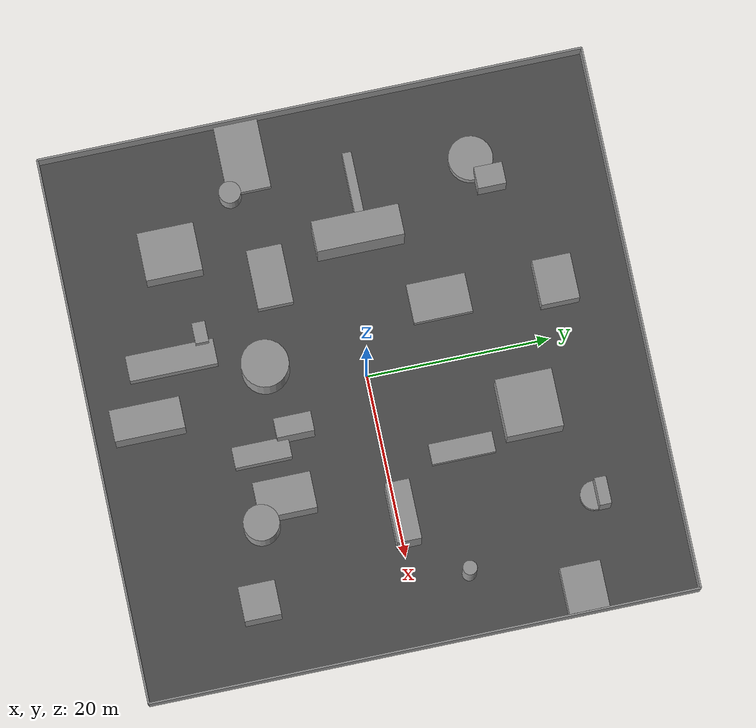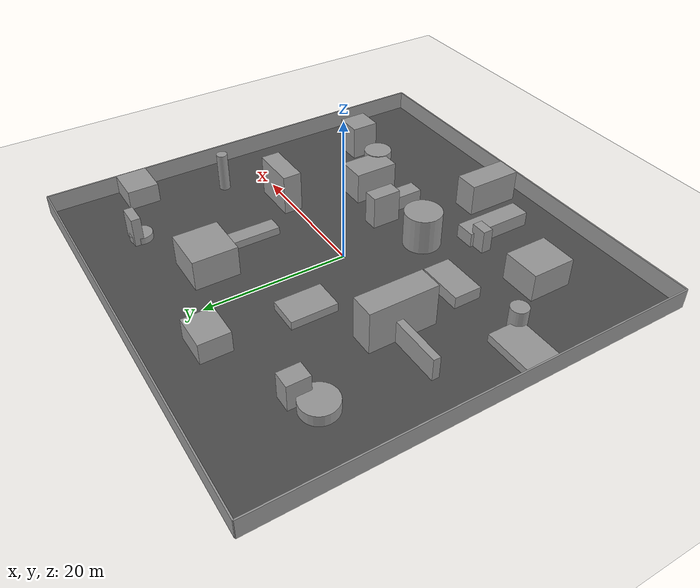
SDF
<sdf version="1.6">
 <world name="default">
  <light name="sun" type="directional">
   <pose>0 0 10 0 -0 0</pose>
   <diffuse>0.8 0.8 0.8 1</diffuse>
   <specular>0.2 0.2 0.2 1</specular>
   <attenuation>
    <range>1000</range>
    <constant>0.9</constant>
    <linear>0.01</linear>
    <quadratic>0.001</quadratic>
   </attenuation>
   <direction>-0.5 0.1 -0.9</direction>
  </light>
  <model name="ground_plane">
   <static>1</static>
   <link name="link">
    <collision name="collision">
     <geometry><plane><normal>0 0 1</normal><size>100 100</size></plane></geometry>
     <surface>
      <contact><collide_bitmask>65535</collide_bitmask></contact>
      <friction><ode><mu>100</mu><mu2>50</mu2></ode></friction>
     </surface>
    </collision>
    <visual name="visual">
     <cast_shadows>0</cast_shadows>
     <geometry><plane><normal>0 0 1</normal><size>100 100</size></plane></geometry>
     <material>
      <script><uri>file://media/materials/scripts/gazebo.material</uri><name>Gazebo/Grey</name></script>
     </material>
    </visual>
   </link>
  </model>
  <gravity>0 0 -9.8</gravity>
  <magnetic_field>6e-06 2.3e-05 -4.2e-05</magnetic_field>
  <atmosphere type="adiabatic"/>
  <physics name="default_physics" default="0" type="ode">
   <max_step_size>0.001</max_step_size>
   <real_time_factor>1</real_time_factor>
   <real_time_update_rate>1000</real_time_update_rate>
  </physics>
  <scene><ambient>0.4 0.4 0.4 1</ambient><background>0.7 0.7 0.7 1</background><shadows>1</shadows></scene>
  <spherical_coordinates>
   <surface_model>EARTH_WGS84</surface_model>
   <latitude_deg>0</latitude_deg>
   <longitude_deg>0</longitude_deg>
   <elevation>0</elevation>
   <heading_deg>0</heading_deg>
  </spherical_coordinates>
  <model name="asphalt_plane">
   <static>1</static>
   <link name="link">
    <collision name="collision"><geometry><box><size>60 60 0.1</size></box></geometry></collision>
    <visual name="visual">
     <cast_shadows>0</cast_shadows>
     <geometry><box><size>60 60 0.1</size></box></geometry>
     <material>
      <script>
       <uri>model://asphalt_plane/materials/scripts</uri>
       <uri>model://asphalt_plane/materials/textures</uri>
       <name>vrc/asphalt</name>
      </script>
     </material>
    </visual>
   </link>
  </model>
  <model name="wall_north">
   <static>1</static>
   <link name="link">
    <pose>0 0 1.4 0 -0 0</pose>
    <collision name="collision"><geometry><box><size>60 0.2 2.8</size></box></geometry></collision>
    <visual name="visual">
     <cast_shadows>0</cast_shadows>
     <geometry><box><size>60 0.2 2.8</size></box></geometry>
     <material>
      <script>
       <uri>model://grey_wall/materials/scripts</uri>
       <uri>model://grey_wall/materials/textures</uri>
       <name>vrc/grey_wall</name>
      </script>
     </material>
    </visual>
   </link>
   <pose>0 30 0 0 -0 0</pose>
  </model>
  <model name="wall_south">
   <static>1</static>
   <link name="link">
    <pose>0 0 1.4 0 -0 0</pose>
    <collision name="collision"><geometry><box><size>60 0.2 2.8</size></box></geometry></collision>
    <visual name="visual">
     <cast_shadows>0</cast_shadows>
     <geometry><box><size>60 0.2 2.8</size></box></geometry>
     <material>
      <script>
       <uri>model://grey_wall/materials/scripts</uri>
       <uri>model://grey_wall/materials/textures</uri>
       <name>vrc/grey_wall</name>
      </script>
     </material>
    </visual>
   </link>
   <pose>0 -30 0 0 -0 0</pose>
  </model>
  <model name="wall_east">
   <static>1</static>
   <link name="link">
    <pose>0 0 1.4 0 -0 0</pose>
    <collision name="collision"><geometry><box><size>60 0.2 2.8</size></box></geometry></collision>
    <visual name="visual">
     <cast_shadows>0</cast_shadows>
     <geometry><box><size>60 0.2 2.8</size></box></geometry>
     <material>
      <script>
       <uri>model://grey_wall/materials/scripts</uri>
       <uri>model://grey_wall/materials/textures</uri>
       <name>vrc/grey_wall</name>
      </script>
     </material>
    </visual>
   </link>
   <pose>30 0 0 0 -0 1.5708</pose>
  </model>
  <model name="wall_west">
   <static>1</static>
   <link name="link">
    <pose>0 0 1.4 0 -0 0</pose>
    <collision name="collision"><geometry><box><size>60 0.2 2.8</size></box></geometry></collision>
    <visual name="visual">
     <cast_shadows>0</cast_shadows>
     <geometry><box><size>60 0.2 2.8</size></box></geometry>
     <material>
      <script>
       <uri>model://grey_wall/materials/scripts</uri>
       <uri>model://grey_wall/materials/textures</uri>
       <name>vrc/grey_wall</name>
      </script>
     </material>
    </visual>
   </link>
   <pose>-30 0 0 0 -0 1.5708</pose>
  </model>
  <model name="shapes">
   <static>1</static>
   <link name="link_0">
    <inertial>
     <mass>358.415</mass>
     <inertia><ixx>6407</ixx><ixy>0</ixy><ixz>0</ixz><iyy>4025.41</iyy><iyz>0</iyz><izz>3064.04</izz></inertia>
    </inertial>
    <pose>-14.9299 2.84768 0 0 -0 0</pose>
    <visual name="visual">
     <geometry><box><size>3.38003 9.54786 11.1063</size></box></geometry>
     <material>
      <lighting>1</lighting>
      <script><uri>file://media/materials/scripts/gazebo.material</uri><name>Gazebo/Grey</name></script>
      <shader type="pixel"/>
     </material>
    </visual>
    <collision name="collision">
     <geometry><box><size>3.38003 9.54786 11.1063</size></box></geometry>
     <surface>
      <friction>
       <ode><mu>1</mu><mu2>1</mu2><fdir1>0 0 0</fdir1><slip1>0</slip1><slip2>0</slip2></ode>
       <torsional>
        <coefficient>1</coefficient>
        <patch_radius>0</patch_radius>
        <surface_radius>0</surface_radius>
        <use_patch_radius>1</use_patch_radius>
        <ode><slip>0</slip></ode>
       </torsional>
      </friction>
      <bounce><restitution_coefficient>0</restitution_coefficient><threshold>1e+06</threshold></bounce>
      <contact>
       <collide_without_contact>0</collide_without_contact>
       <collide_without_contact_bitmask>1</collide_without_contact_bitmask>
       <collide_bitmask>1</collide_bitmask>
       <ode>
        <soft_cfm>0</soft_cfm>
        <soft_erp>0.2</soft_erp>
        <kp>1e+13</kp>
        <kd>1</kd>
        <max_vel>0.01</max_vel>
        <min_depth>0</min_depth>
       </ode>
       <bullet>
        <split_impulse>1</split_impulse>
        <split_impulse_penetration_threshold>-0.01</split_impulse_penetration_threshold>
        <soft_cfm>0</soft_cfm>
        <soft_erp>0.2</soft_erp>
        <kp>1e+13</kp>
        <kd>1</kd>
       </bullet>
      </contact>
     </surface>
    </collision>
   </link>
   <link name="link_1">
    <inertial>
     <mass>47.9836</mass>
     <inertia><ixx>207.551</ixx><ixy>0</ixy><ixz>0</ixz><iyy>191.837</iyy><iyz>0</iyz><izz>61.0569</izz></inertia>
    </inertial>
    <pose>-18.023 18.0256 0 0 -0 0</pose>
    <visual name="visual">
     <geometry><box><size>2.38112 3.09833 6.5043</size></box></geometry>
     <material>
      <lighting>1</lighting>
      <script><uri>file://media/materials/scripts/gazebo.material</uri><name>Gazebo/Grey</name></script>
      <shader type="pixel"/>
     </material>
    </visual>
    <collision name="collision">
     <geometry><box><size>2.38112 3.09833 6.5043</size></box></geometry>
     <surface>
      <friction>
       <ode><mu>1</mu><mu2>1</mu2><fdir1>0 0 0</fdir1><slip1>0</slip1><slip2>0</slip2></ode>
       <torsional>
        <coefficient>1</coefficient>
        <patch_radius>0</patch_radius>
        <surface_radius>0</surface_radius>
        <use_patch_radius>1</use_patch_radius>
        <ode><slip>0</slip></ode>
       </torsional>
      </friction>
      <bounce><restitution_coefficient>0</restitution_coefficient><threshold>1e+06</threshold></bounce>
      <contact>
       <collide_without_contact>0</collide_without_contact>
       <collide_without_contact_bitmask>1</collide_without_contact_bitmask>
       <collide_bitmask>1</collide_bitmask>
       <ode>
        <soft_cfm>0</soft_cfm>
        <soft_erp>0.2</soft_erp>
        <kp>1e+13</kp>
        <kd>1</kd>
        <max_vel>0.01</max_vel>
        <min_depth>0</min_depth>
       </ode>
       <bullet>
        <split_impulse>1</split_impulse>
        <split_impulse_penetration_threshold>-0.01</split_impulse_penetration_threshold>
        <soft_cfm>0</soft_cfm>
        <soft_erp>0.2</soft_erp>
        <kp>1e+13</kp>
        <kd>1</kd>
       </bullet>
      </contact>
     </surface>
    </collision>
   </link>
   <link name="link_10">
    <inertial>
     <mass>206.866</mass>
     <inertia><ixx>1860.24</ixx><ixy>0</ixy><ixz>0</ixz><iyy>1452.89</iyy><iyz>0</iyz><izz>953.538</izz></inertia>
    </inertial>
    <pose>11.5115 -10.6501 0 0 -0 0</pose>
    <visual name="visual">
     <geometry><box><size>3.98018 6.28263 8.27273</size></box></geometry>
     <material>
      <lighting>1</lighting>
      <script><uri>file://media/materials/scripts/gazebo.material</uri><name>Gazebo/Grey</name></script>
      <shader type="pixel"/>
     </material>
    </visual>
    <collision name="collision">
     <geometry><box><size>3.98018 6.28263 8.27273</size></box></geometry>
     <surface>
      <friction>
       <ode><mu>1</mu><mu2>1</mu2><fdir1>0 0 0</fdir1><slip1>0</slip1><slip2>0</slip2></ode>
       <torsional>
        <coefficient>1</coefficient>
        <patch_radius>0</patch_radius>
        <surface_radius>0</surface_radius>
        <use_patch_radius>1</use_patch_radius>
        <ode><slip>0</slip></ode>
       </torsional>
      </friction>
      <bounce><restitution_coefficient>0</restitution_coefficient><threshold>1e+06</threshold></bounce>
      <contact>
       <collide_without_contact>0</collide_without_contact>
       <collide_without_contact_bitmask>1</collide_without_contact_bitmask>
       <collide_bitmask>1</collide_bitmask>
       <ode>
        <soft_cfm>0</soft_cfm>
        <soft_erp>0.2</soft_erp>
        <kp>1e+13</kp>
        <kd>1</kd>
        <max_vel>0.01</max_vel>
        <min_depth>0</min_depth>
       </ode>
       <bullet>
        <split_impulse>1</split_impulse>
        <split_impulse_penetration_threshold>-0.01</split_impulse_penetration_threshold>
        <soft_cfm>0</soft_cfm>
        <soft_erp>0.2</soft_erp>
        <kp>1e+13</kp>
        <kd>1</kd>
       </bullet>
      </contact>
     </surface>
    </collision>
   </link>
   <link name="link_11">
    <inertial>
     <mass>46.7854</mass>
     <inertia><ixx>193</ixx><ixy>0</ixy><ixz>0</ixz><iyy>63.1853</iyy><iyz>0</iyz><izz>169.964</izz></inertia>
    </inertial>
    <pose>6.15299 -12.0839 0 0 -0 0</pose>
    <visual name="visual">
     <geometry><box><size>2.26913 6.20043 3.32528</size></box></geometry>
     <material>
      <lighting>1</lighting>
      <script><uri>file://media/materials/scripts/gazebo.material</uri><name>Gazebo/Grey</name></script>
      <shader type="pixel"/>
     </material>
    </visual>
    <collision name="collision">
     <geometry><box><size>2.26913 6.20043 3.32528</size></box></geometry>
     <surface>
      <friction>
       <ode><mu>1</mu><mu2>1</mu2><fdir1>0 0 0</fdir1><slip1>0</slip1><slip2>0</slip2></ode>
       <torsional>
        <coefficient>1</coefficient>
        <patch_radius>0</patch_radius>
        <surface_radius>0</surface_radius>
        <use_patch_radius>1</use_patch_radius>
        <ode><slip>0</slip></ode>
       </torsional>
      </friction>
      <bounce><restitution_coefficient>0</restitution_coefficient><threshold>1e+06</threshold></bounce>
      <contact>
       <collide_without_contact>0</collide_without_contact>
       <collide_without_contact_bitmask>1</collide_without_contact_bitmask>
       <collide_bitmask>1</collide_bitmask>
       <ode>
        <soft_cfm>0</soft_cfm>
        <soft_erp>0.2</soft_erp>
        <kp>1e+13</kp>
        <kd>1</kd>
        <max_vel>0.01</max_vel>
        <min_depth>0</min_depth>
       </ode>
       <bullet>
        <split_impulse>1</split_impulse>
        <split_impulse_penetration_threshold>-0.01</split_impulse_penetration_threshold>
        <soft_cfm>0</soft_cfm>
        <soft_erp>0.2</soft_erp>
        <kp>1e+13</kp>
        <kd>1</kd>
       </bullet>
      </contact>
     </surface>
    </collision>
   </link>
   <link name="link_12">
    <inertial>
     <mass>215.851</mass>
     <inertia><ixx>2260.62</ixx><ixy>0</ixy><ixz>0</ixz><iyy>1420.64</iyy><iyz>0</iyz><izz>1266.45</izz></inertia>
    </inertial>
    <pose>0.469657 -23.3557 0 0 -0 0</pose>
    <visual name="visual">
     <geometry><box><size>3.44308 7.65194 8.19294</size></box></geometry>
     <material>
      <lighting>1</lighting>
      <script><uri>file://media/materials/scripts/gazebo.material</uri><name>Gazebo/Grey</name></script>
      <shader type="pixel"/>
     </material>
    </visual>
    <collision name="collision">
     <geometry><box><size>3.44308 7.65194 8.19294</size></box></geometry>
     <surface>
      <friction>
       <ode><mu>1</mu><mu2>1</mu2><fdir1>0 0 0</fdir1><slip1>0</slip1><slip2>0</slip2></ode>
       <torsional>
        <coefficient>1</coefficient>
        <patch_radius>0</patch_radius>
        <surface_radius>0</surface_radius>
        <use_patch_radius>1</use_patch_radius>
        <ode><slip>0</slip></ode>
       </torsional>
      </friction>
      <bounce><restitution_coefficient>0</restitution_coefficient><threshold>1e+06</threshold></bounce>
      <contact>
       <collide_without_contact>0</collide_without_contact>
       <collide_without_contact_bitmask>1</collide_without_contact_bitmask>
       <collide_bitmask>1</collide_bitmask>
       <ode>
        <soft_cfm>0</soft_cfm>
        <soft_erp>0.2</soft_erp>
        <kp>1e+13</kp>
        <kd>1</kd>
        <max_vel>0.01</max_vel>
        <min_depth>0</min_depth>
       </ode>
       <bullet>
        <split_impulse>1</split_impulse>
        <split_impulse_penetration_threshold>-0.01</split_impulse_penetration_threshold>
        <soft_cfm>0</soft_cfm>
        <soft_erp>0.2</soft_erp>
        <kp>1e+13</kp>
        <kd>1</kd>
       </bullet>
      </contact>
     </surface>
    </collision>
   </link>
   <link name="link_13">
    <inertial>
     <mass>137.114</mass>
     <inertia><ixx>1132.91</ixx><ixy>0</ixy><ixz>0</ixz><iyy>1113.77</iyy><iyz>0</iyz><izz>343.923</izz></inertia>
    </inertial>
    <pose>22.0665 -15.5581 0 0 -0 0</pose>
    <visual name="visual">
     <geometry><box><size>3.76989 3.9859 9.12485</size></box></geometry>
     <material>
      <lighting>1</lighting>
      <script><uri>file://media/materials/scripts/gazebo.material</uri><name>Gazebo/Grey</name></script>
      <shader type="pixel"/>
     </material>
    </visual>
    <collision name="collision">
     <geometry><box><size>3.76989 3.9859 9.12485</size></box></geometry>
     <surface>
      <friction>
       <ode><mu>1</mu><mu2>1</mu2><fdir1>0 0 0</fdir1><slip1>0</slip1><slip2>0</slip2></ode>
       <torsional>
        <coefficient>1</coefficient>
        <patch_radius>0</patch_radius>
        <surface_radius>0</surface_radius>
        <use_patch_radius>1</use_patch_radius>
        <ode><slip>0</slip></ode>
       </torsional>
      </friction>
      <bounce><restitution_coefficient>0</restitution_coefficient><threshold>1e+06</threshold></bounce>
      <contact>
       <collide_without_contact>0</collide_without_contact>
       <collide_without_contact_bitmask>1</collide_without_contact_bitmask>
       <collide_bitmask>1</collide_bitmask>
       <ode>
        <soft_cfm>0</soft_cfm>
        <soft_erp>0.2</soft_erp>
        <kp>1e+13</kp>
        <kd>1</kd>
        <max_vel>0.01</max_vel>
        <min_depth>0</min_depth>
       </ode>
       <bullet>
        <split_impulse>1</split_impulse>
        <split_impulse_penetration_threshold>-0.01</split_impulse_penetration_threshold>
        <soft_cfm>0</soft_cfm>
        <soft_erp>0.2</soft_erp>
        <kp>1e+13</kp>
        <kd>1</kd>
       </bullet>
      </contact>
     </surface>
    </collision>
   </link>
   <link name="link_14">
    <inertial>
     <mass>28.5956</mass>
     <inertia><ixx>135.015</ixx><ixy>0</ixy><ixz>0</ixz><iyy>152.662</iyy><iyz>0</iyz><izz>25.4771</izz></inertia>
    </inertial>
    <pose>17.9509 22.6234 0 0 -0 0</pose>
    <visual name="visual">
     <geometry><box><size>3.00806 1.28175 7.41724</size></box></geometry>
     <material>
      <lighting>1</lighting>
      <script><uri>file://media/materials/scripts/gazebo.material</uri><name>Gazebo/Grey</name></script>
      <shader type="pixel"/>
     </material>
    </visual>
    <collision name="collision">
     <geometry><box><size>3.00806 1.28175 7.41724</size></box></geometry>
     <surface>
      <friction>
       <ode><mu>1</mu><mu2>1</mu2><fdir1>0 0 0</fdir1><slip1>0</slip1><slip2>0</slip2></ode>
       <torsional>
        <coefficient>1</coefficient>
        <patch_radius>0</patch_radius>
        <surface_radius>0</surface_radius>
        <use_patch_radius>1</use_patch_radius>
        <ode><slip>0</slip></ode>
       </torsional>
      </friction>
      <bounce><restitution_coefficient>0</restitution_coefficient><threshold>1e+06</threshold></bounce>
      <contact>
       <collide_without_contact>0</collide_without_contact>
       <collide_without_contact_bitmask>1</collide_without_contact_bitmask>
       <collide_bitmask>1</collide_bitmask>
       <ode>
        <soft_cfm>0</soft_cfm>
        <soft_erp>0.2</soft_erp>
        <kp>1e+13</kp>
        <kd>1</kd>
        <max_vel>0.01</max_vel>
        <min_depth>0</min_depth>
       </ode>
       <bullet>
        <split_impulse>1</split_impulse>
        <split_impulse_penetration_threshold>-0.01</split_impulse_penetration_threshold>
        <soft_cfm>0</soft_cfm>
        <soft_erp>0.2</soft_erp>
        <kp>1e+13</kp>
        <kd>1</kd>
       </bullet>
      </contact>
     </surface>
    </collision>
   </link>
   <link name="link_15">
    <inertial>
     <mass>52.0342</mass>
     <inertia><ixx>97.9948</ixx><ixy>0</ixy><ixz>0</ixz><iyy>97.9948</iyy><iyz>0</iyz><izz>154.222</izz></inertia>
    </inertial>
    <pose>-20.6846 16.497 0 0 -0 0</pose>
    <visual name="visual">
     <geometry><cylinder><radius>2.43469</radius><length>2.19458</length></cylinder></geometry>
     <material>
      <lighting>1</lighting>
      <script><uri>file://media/materials/scripts/gazebo.material</uri><name>Gazebo/Grey</name></script>
      <shader type="pixel"/>
     </material>
    </visual>
    <collision name="collision">
     <geometry><cylinder><radius>2.43469</radius><length>2.19458</length></cylinder></geometry>
     <surface>
      <friction>
       <ode><mu>1</mu><mu2>1</mu2><fdir1>0 0 0</fdir1><slip1>0</slip1><slip2>0</slip2></ode>
       <torsional>
        <coefficient>1</coefficient>
        <patch_radius>0</patch_radius>
        <surface_radius>0</surface_radius>
        <use_patch_radius>1</use_patch_radius>
        <ode><slip>0</slip></ode>
       </torsional>
      </friction>
      <bounce><restitution_coefficient>0</restitution_coefficient><threshold>1e+06</threshold></bounce>
      <contact>
       <collide_without_contact>0</collide_without_contact>
       <collide_without_contact_bitmask>1</collide_without_contact_bitmask>
       <collide_bitmask>1</collide_bitmask>
       <ode>
        <soft_cfm>0</soft_cfm>
        <soft_erp>0.2</soft_erp>
        <kp>1e+13</kp>
        <kd>1</kd>
        <max_vel>0.01</max_vel>
        <min_depth>0</min_depth>
       </ode>
       <bullet>
        <split_impulse>1</split_impulse>
        <split_impulse_penetration_threshold>-0.01</split_impulse_penetration_threshold>
        <soft_cfm>0</soft_cfm>
        <soft_erp>0.2</soft_erp>
        <kp>1e+13</kp>
        <kd>1</kd>
       </bullet>
      </contact>
     </surface>
    </collision>
   </link>
   <link name="link_16">
    <inertial>
     <mass>31.5678</mass>
     <inertia><ixx>90.8197</ixx><ixy>0</ixy><ixz>0</ixz><iyy>90.8197</iyy><iyz>0</iyz><izz>22.6608</izz></inertia>
    </inertial>
    <pose>-22.0525 -9.72394 0 0 -0 0</pose>
    <visual name="visual">
     <geometry><cylinder><radius>1.1982</radius><length>5.49696</length></cylinder></geometry>
     <material>
      <lighting>1</lighting>
      <script><uri>file://media/materials/scripts/gazebo.material</uri><name>Gazebo/Grey</name></script>
      <shader type="pixel"/>
     </material>
    </visual>
    <collision name="collision">
     <geometry><cylinder><radius>1.1982</radius><length>5.49696</length></cylinder></geometry>
     <surface>
      <friction>
       <ode><mu>1</mu><mu2>1</mu2><fdir1>0 0 0</fdir1><slip1>0</slip1><slip2>0</slip2></ode>
       <torsional>
        <coefficient>1</coefficient>
        <patch_radius>0</patch_radius>
        <surface_radius>0</surface_radius>
        <use_patch_radius>1</use_patch_radius>
        <ode><slip>0</slip></ode>
       </torsional>
      </friction>
      <bounce><restitution_coefficient>0</restitution_coefficient><threshold>1e+06</threshold></bounce>
      <contact>
       <collide_without_contact>0</collide_without_contact>
       <collide_without_contact_bitmask>1</collide_without_contact_bitmask>
       <collide_bitmask>1</collide_bitmask>
       <ode>
        <soft_cfm>0</soft_cfm>
        <soft_erp>0.2</soft_erp>
        <kp>1e+13</kp>
        <kd>1</kd>
        <max_vel>0.01</max_vel>
        <min_depth>0</min_depth>
       </ode>
       <bullet>
        <split_impulse>1</split_impulse>
        <split_impulse_penetration_threshold>-0.01</split_impulse_penetration_threshold>
        <soft_cfm>0</soft_cfm>
        <soft_erp>0.2</soft_erp>
        <kp>1e+13</kp>
        <kd>1</kd>
       </bullet>
      </contact>
     </surface>
    </collision>
   </link>
   <link name="link_17">
    <inertial>
     <mass>130.94</mass>
     <inertia><ixx>911.857</ixx><ixy>0</ixy><ixz>0</ixz><iyy>911.857</iyy><iyz>0</iyz><izz>252.587</izz></inertia>
    </inertial>
    <pose>13.8973 -13.6804 0 0 -0 0</pose>
    <visual name="visual">
     <geometry><cylinder><radius>1.9642</radius><length>8.48488</length></cylinder></geometry>
     <material>
      <lighting>1</lighting>
      <script><uri>file://media/materials/scripts/gazebo.material</uri><name>Gazebo/Grey</name></script>
      <shader type="pixel"/>
     </material>
    </visual>
    <collision name="collision">
     <geometry><cylinder><radius>1.96419</radius><length>8.48488</length></cylinder></geometry>
     <surface>
      <friction>
       <ode><mu>1</mu><mu2>1</mu2><fdir1>0 0 0</fdir1><slip1>0</slip1><slip2>0</slip2></ode>
       <torsional>
        <coefficient>1</coefficient>
        <patch_radius>0</patch_radius>
        <surface_radius>0</surface_radius>
        <use_patch_radius>1</use_patch_radius>
        <ode><slip>0</slip></ode>
       </torsional>
      </friction>
      <bounce><restitution_coefficient>0</restitution_coefficient><threshold>1e+06</threshold></bounce>
      <contact>
       <collide_without_contact>0</collide_without_contact>
       <collide_without_contact_bitmask>1</collide_without_contact_bitmask>
       <collide_bitmask>1</collide_bitmask>
       <ode>
        <soft_cfm>0</soft_cfm>
        <soft_erp>0.2</soft_erp>
        <kp>1e+13</kp>
        <kd>1</kd>
        <max_vel>0.01</max_vel>
        <min_depth>0</min_depth>
       </ode>
       <bullet>
        <split_impulse>1</split_impulse>
        <split_impulse_penetration_threshold>-0.01</split_impulse_penetration_threshold>
        <soft_cfm>0</soft_cfm>
        <soft_erp>0.2</soft_erp>
        <kp>1e+13</kp>
        <kd>1</kd>
       </bullet>
      </contact>
     </surface>
    </collision>
   </link>
   <link name="link_18">
    <inertial>
     <mass>25.1711</mass>
     <inertia><ixx>229.811</ixx><ixy>0</ixy><ixz>0</ixz><iyy>229.811</iyy><iyz>0</iyz><izz>7.62858</izz></inertia>
    </inertial>
    <pose>23.2897 6.99718 0 0 -0 0</pose>
    <visual name="visual">
     <geometry><cylinder><radius>0.778548</radius><length>10.3798</length></cylinder></geometry>
     <material>
      <lighting>1</lighting>
      <script><uri>file://media/materials/scripts/gazebo.material</uri><name>Gazebo/Grey</name></script>
      <shader type="pixel"/>
     </material>
    </visual>
    <collision name="collision">
     <geometry><cylinder><radius>0.778548</radius><length>10.3798</length></cylinder></geometry>
     <surface>
      <friction>
       <ode><mu>1</mu><mu2>1</mu2><fdir1>0 0 0</fdir1><slip1>0</slip1><slip2>0</slip2></ode>
       <torsional>
        <coefficient>1</coefficient>
        <patch_radius>0</patch_radius>
        <surface_radius>0</surface_radius>
        <use_patch_radius>1</use_patch_radius>
        <ode><slip>0</slip></ode>
       </torsional>
      </friction>
      <bounce><restitution_coefficient>0</restitution_coefficient><threshold>1e+06</threshold></bounce>
      <contact>
       <collide_without_contact>0</collide_without_contact>
       <collide_without_contact_bitmask>1</collide_without_contact_bitmask>
       <collide_bitmask>1</collide_bitmask>
       <ode>
        <soft_cfm>0</soft_cfm>
        <soft_erp>0.2</soft_erp>
        <kp>1e+13</kp>
        <kd>1</kd>
        <max_vel>0.01</max_vel>
        <min_depth>0</min_depth>
       </ode>
       <bullet>
        <split_impulse>1</split_impulse>
        <split_impulse_penetration_threshold>-0.01</split_impulse_penetration_threshold>
        <soft_cfm>0</soft_cfm>
        <soft_erp>0.2</soft_erp>
        <kp>1e+13</kp>
        <kd>1</kd>
       </bullet>
      </contact>
     </surface>
    </collision>
   </link>
   <link name="link_19">
    <inertial>
     <mass>251.353</mass>
     <inertia><ixx>2248.8</ixx><ixy>0</ixy><ixz>0</ixz><iyy>2248.8</iyy><iyz>0</iyz><izz>845.843</izz></inertia>
    </inertial>
    <pose>-2.74991 -9.83541 0 0 -0 0</pose>
    <visual name="visual">
     <geometry><cylinder><radius>2.59428</radius><length>9.3365</length></cylinder></geometry>
     <material>
      <lighting>1</lighting>
      <script><uri>file://media/materials/scripts/gazebo.material</uri><name>Gazebo/Grey</name></script>
      <shader type="pixel"/>
     </material>
    </visual>
    <collision name="collision">
     <geometry><cylinder><radius>2.59429</radius><length>9.3365</length></cylinder></geometry>
     <surface>
      <friction>
       <ode><mu>1</mu><mu2>1</mu2><fdir1>0 0 0</fdir1><slip1>0</slip1><slip2>0</slip2></ode>
       <torsional>
        <coefficient>1</coefficient>
        <patch_radius>0</patch_radius>
        <surface_radius>0</surface_radius>
        <use_patch_radius>1</use_patch_radius>
        <ode><slip>0</slip></ode>
       </torsional>
      </friction>
      <bounce><restitution_coefficient>0</restitution_coefficient><threshold>1e+06</threshold></bounce>
      <contact>
       <collide_without_contact>0</collide_without_contact>
       <collide_without_contact_bitmask>1</collide_without_contact_bitmask>
       <collide_bitmask>1</collide_bitmask>
       <ode>
        <soft_cfm>0</soft_cfm>
        <soft_erp>0.2</soft_erp>
        <kp>1e+13</kp>
        <kd>1</kd>
        <max_vel>0.01</max_vel>
        <min_depth>0</min_depth>
       </ode>
       <bullet>
        <split_impulse>1</split_impulse>
        <split_impulse_penetration_threshold>-0.01</split_impulse_penetration_threshold>
        <soft_cfm>0</soft_cfm>
        <soft_erp>0.2</soft_erp>
        <kp>1e+13</kp>
        <kd>1</kd>
       </bullet>
      </contact>
     </surface>
    </collision>
   </link>
   <link name="link_2">
    <inertial>
     <mass>303.8</mass>
     <inertia><ixx>2485.5</ixx><ixy>0</ixy><ixz>0</ixz><iyy>2533.5</iyy><iyz>0</iyz><izz>1989.07</izz></inertia>
    </inertial>
    <pose>7.10053 16.924 0 0 -0 0</pose>
    <visual name="visual">
     <geometry><box><size>6.34284 6.1916 7.73567</size></box></geometry>
     <material>
      <lighting>1</lighting>
      <script><uri>file://media/materials/scripts/gazebo.material</uri><name>Gazebo/Grey</name></script>
      <shader type="pixel"/>
     </material>
    </visual>
    <collision name="collision">
     <geometry><box><size>6.34284 6.1916 7.73567</size></box></geometry>
     <surface>
      <friction>
       <ode><mu>1</mu><mu2>1</mu2><fdir1>0 0 0</fdir1><slip1>0</slip1><slip2>0</slip2></ode>
       <torsional>
        <coefficient>1</coefficient>
        <patch_radius>0</patch_radius>
        <surface_radius>0</surface_radius>
        <use_patch_radius>1</use_patch_radius>
        <ode><slip>0</slip></ode>
       </torsional>
      </friction>
      <bounce><restitution_coefficient>0</restitution_coefficient><threshold>1e+06</threshold></bounce>
      <contact>
       <collide_without_contact>0</collide_without_contact>
       <collide_without_contact_bitmask>1</collide_without_contact_bitmask>
       <collide_bitmask>1</collide_bitmask>
       <ode>
        <soft_cfm>0</soft_cfm>
        <soft_erp>0.2</soft_erp>
        <kp>1e+13</kp>
        <kd>1</kd>
        <max_vel>0.01</max_vel>
        <min_depth>0</min_depth>
       </ode>
       <bullet>
        <split_impulse>1</split_impulse>
        <split_impulse_penetration_threshold>-0.01</split_impulse_penetration_threshold>
        <soft_cfm>0</soft_cfm>
        <soft_erp>0.2</soft_erp>
        <kp>1e+13</kp>
        <kd>1</kd>
       </bullet>
      </contact>
     </surface>
    </collision>
   </link>
   <link name="link_20">
    <inertial>
     <mass>41.5664</mass>
     <inertia><ixx>152.644</ixx><ixy>0</ixy><ixz>0</ixz><iyy>71.8196</iyy><iyz>0</iyz><izz>209</izz></inertia>
    </inertial>
    <pose>-6.44641 10.0329 0 0 -0 0</pose>
    <visual name="visual">
     <geometry><box><size>4.30137 6.46802 1.49404</size></box></geometry>
     <material>
      <lighting>1</lighting>
      <script><uri>file://media/materials/scripts/gazebo.material</uri><name>Gazebo/Grey</name></script>
      <shader type="pixel"/>
     </material>
    </visual>
    <collision name="collision">
     <geometry><box><size>4.30137 6.46802 1.49404</size></box></geometry>
     <surface>
      <friction>
       <ode><mu>1</mu><mu2>1</mu2><fdir1>0 0 0</fdir1><slip1>0</slip1><slip2>0</slip2></ode>
       <torsional>
        <coefficient>1</coefficient>
        <patch_radius>0</patch_radius>
        <surface_radius>0</surface_radius>
        <use_patch_radius>1</use_patch_radius>
        <ode><slip>0</slip></ode>
       </torsional>
      </friction>
      <bounce><restitution_coefficient>0</restitution_coefficient><threshold>1e+06</threshold></bounce>
      <contact>
       <collide_without_contact>0</collide_without_contact>
       <collide_without_contact_bitmask>1</collide_without_contact_bitmask>
       <collide_bitmask>1</collide_bitmask>
       <ode>
        <soft_cfm>0</soft_cfm>
        <soft_erp>0.2</soft_erp>
        <kp>1e+13</kp>
        <kd>1</kd>
        <max_vel>0.01</max_vel>
        <min_depth>0</min_depth>
       </ode>
       <bullet>
        <split_impulse>1</split_impulse>
        <split_impulse_penetration_threshold>-0.01</split_impulse_penetration_threshold>
        <soft_cfm>0</soft_cfm>
        <soft_erp>0.2</soft_erp>
        <kp>1e+13</kp>
        <kd>1</kd>
       </bullet>
      </contact>
     </surface>
    </collision>
   </link>
   <link name="link_21">
    <inertial>
     <mass>85.689</mass>
     <inertia><ixx>734.007</ixx><ixy>0</ixy><ixz>0</ixz><iyy>128.465</iyy><iyz>0</iyz><izz>716.103</izz></inertia>
    </inertial>
    <pose>-5.64414 -19.5297 0 0 -0 0</pose>
    <visual name="visual">
     <geometry><box><size>2.78237 9.6199 3.20138</size></box></geometry>
     <material>
      <lighting>1</lighting>
      <script><uri>file://media/materials/scripts/gazebo.material</uri><name>Gazebo/Grey</name></script>
      <shader type="pixel"/>
     </material>
    </visual>
    <collision name="collision">
     <geometry><box><size>2.78237 9.6199 3.20138</size></box></geometry>
     <surface>
      <friction>
       <ode><mu>1</mu><mu2>1</mu2><fdir1>0 0 0</fdir1><slip1>0</slip1><slip2>0</slip2></ode>
       <torsional>
        <coefficient>1</coefficient>
        <patch_radius>0</patch_radius>
        <surface_radius>0</surface_radius>
        <use_patch_radius>1</use_patch_radius>
        <ode><slip>0</slip></ode>
       </torsional>
      </friction>
      <bounce><restitution_coefficient>0</restitution_coefficient><threshold>1e+06</threshold></bounce>
      <contact>
       <collide_without_contact>0</collide_without_contact>
       <collide_without_contact_bitmask>1</collide_without_contact_bitmask>
       <collide_bitmask>1</collide_bitmask>
       <ode>
        <soft_cfm>0</soft_cfm>
        <soft_erp>0.2</soft_erp>
        <kp>1e+13</kp>
        <kd>1</kd>
        <max_vel>0.01</max_vel>
        <min_depth>0</min_depth>
       </ode>
       <bullet>
        <split_impulse>1</split_impulse>
        <split_impulse_penetration_threshold>-0.01</split_impulse_penetration_threshold>
        <soft_cfm>0</soft_cfm>
        <soft_erp>0.2</soft_erp>
        <kp>1e+13</kp>
        <kd>1</kd>
       </bullet>
      </contact>
     </surface>
    </collision>
   </link>
   <link name="link_22">
    <inertial>
     <mass>52.6529</mass>
     <inertia><ixx>133.785</ixx><ixy>0</ixy><ixz>0</ixz><iyy>541.927</iyy><iyz>0</iyz><izz>416.918</izz></inertia>
    </inertial>
    <pose>-18.8755 3.45984 0 0 -0 0</pose>
    <visual name="visual">
     <geometry><box><size>9.69632 1 5.43053</size></box></geometry>
     <material>
      <lighting>1</lighting>
      <script><uri>file://media/materials/scripts/gazebo.material</uri><name>Gazebo/Grey</name></script>
      <shader type="pixel"/>
     </material>
    </visual>
    <collision name="collision">
     <geometry><box><size>9.69632 1 5.43053</size></box></geometry>
     <surface>
      <friction>
       <ode><mu>1</mu><mu2>1</mu2><fdir1>0 0 0</fdir1><slip1>0</slip1><slip2>0</slip2></ode>
       <torsional>
        <coefficient>1</coefficient>
        <patch_radius>0</patch_radius>
        <surface_radius>0</surface_radius>
        <use_patch_radius>1</use_patch_radius>
        <ode><slip>0</slip></ode>
       </torsional>
      </friction>
      <bounce><restitution_coefficient>0</restitution_coefficient><threshold>1e+06</threshold></bounce>
      <contact>
       <collide_without_contact>0</collide_without_contact>
       <collide_without_contact_bitmask>1</collide_without_contact_bitmask>
       <collide_bitmask>1</collide_bitmask>
       <ode>
        <soft_cfm>0</soft_cfm>
        <soft_erp>0.2</soft_erp>
        <kp>1e+13</kp>
        <kd>1</kd>
        <max_vel>0.01</max_vel>
        <min_depth>0</min_depth>
       </ode>
       <bullet>
        <split_impulse>1</split_impulse>
        <split_impulse_penetration_threshold>-0.01</split_impulse_penetration_threshold>
        <soft_cfm>0</soft_cfm>
        <soft_erp>0.2</soft_erp>
        <kp>1e+13</kp>
        <kd>1</kd>
       </bullet>
      </contact>
     </surface>
    </collision>
   </link>
   <link name="link_23">
    <inertial>
     <mass>19.0418</mass>
     <inertia><ixx>56.28</ixx><ixy>0</ixy><ixz>0</ixz><iyy>61.3177</iyy><iyz>0</iyz><izz>11.6074</izz></inertia>
    </inertial>
    <pose>-7.73672 -15.9167 0 0 -0 0</pose>
    <visual name="visual">
     <geometry><box><size>2.29016 1.43878 5.77902</size></box></geometry>
     <material>
      <lighting>1</lighting>
      <script><uri>file://media/materials/scripts/gazebo.material</uri><name>Gazebo/Grey</name></script>
      <shader type="pixel"/>
     </material>
    </visual>
    <collision name="collision">
     <geometry><box><size>2.29016 1.43878 5.77902</size></box></geometry>
     <surface>
      <friction>
       <ode><mu>1</mu><mu2>1</mu2><fdir1>0 0 0</fdir1><slip1>0</slip1><slip2>0</slip2></ode>
       <torsional>
        <coefficient>1</coefficient>
        <patch_radius>0</patch_radius>
        <surface_radius>0</surface_radius>
        <use_patch_radius>1</use_patch_radius>
        <ode><slip>0</slip></ode>
       </torsional>
      </friction>
      <bounce><restitution_coefficient>0</restitution_coefficient><threshold>1e+06</threshold></bounce>
      <contact>
       <collide_without_contact>0</collide_without_contact>
       <collide_without_contact_bitmask>1</collide_without_contact_bitmask>
       <collide_bitmask>1</collide_bitmask>
       <ode>
        <soft_cfm>0</soft_cfm>
        <soft_erp>0.2</soft_erp>
        <kp>1e+13</kp>
        <kd>1</kd>
        <max_vel>0.01</max_vel>
        <min_depth>0</min_depth>
       </ode>
       <bullet>
        <split_impulse>1</split_impulse>
        <split_impulse_penetration_threshold>-0.01</split_impulse_penetration_threshold>
        <soft_cfm>0</soft_cfm>
        <soft_erp>0.2</soft_erp>
        <kp>1e+13</kp>
        <kd>1</kd>
       </bullet>
      </contact>
     </surface>
    </collision>
   </link>
   <link name="link_24">
    <inertial>
     <mass>20.9053</mass>
     <inertia><ixx>87.6594</ixx><ixy>0</ixy><ixz>0</ixz><iyy>11.8963</iyy><iyz>0</iyz><izz>93.3341</izz></inertia>
    </inertial>
    <pose>9.97502 9.02837 0 0 -0 0</pose>
    <visual name="visual">
     <geometry><box><size>2.24566 6.96651 1.33629</size></box></geometry>
     <material>
      <lighting>1</lighting>
      <script><uri>file://media/materials/scripts/gazebo.material</uri><name>Gazebo/Grey</name></script>
      <shader type="pixel"/>
     </material>
    </visual>
    <collision name="collision">
     <geometry><box><size>2.24566 6.96651 1.33629</size></box></geometry>
     <surface>
      <friction>
       <ode><mu>1</mu><mu2>1</mu2><fdir1>0 0 0</fdir1><slip1>0</slip1><slip2>0</slip2></ode>
       <torsional>
        <coefficient>1</coefficient>
        <patch_radius>0</patch_radius>
        <surface_radius>0</surface_radius>
        <use_patch_radius>1</use_patch_radius>
        <ode><slip>0</slip></ode>
       </torsional>
      </friction>
      <bounce><restitution_coefficient>0</restitution_coefficient><threshold>1e+06</threshold></bounce>
      <contact>
       <collide_without_contact>0</collide_without_contact>
       <collide_without_contact_bitmask>1</collide_without_contact_bitmask>
       <collide_bitmask>1</collide_bitmask>
       <ode>
        <soft_cfm>0</soft_cfm>
        <soft_erp>0.2</soft_erp>
        <kp>1e+13</kp>
        <kd>1</kd>
        <max_vel>0.01</max_vel>
        <min_depth>0</min_depth>
       </ode>
       <bullet>
        <split_impulse>1</split_impulse>
        <split_impulse_penetration_threshold>-0.01</split_impulse_penetration_threshold>
        <soft_cfm>0</soft_cfm>
        <soft_erp>0.2</soft_erp>
        <kp>1e+13</kp>
        <kd>1</kd>
       </bullet>
      </contact>
     </surface>
    </collision>
   </link>
   <link name="link_25">
    <inertial>
     <mass>9.93794</mass>
     <inertia><ixx>7.00077</ixx><ixy>0</ixy><ixz>0</ixz><iyy>7.00077</iyy><iyz>0</iyz><izz>12.3452</izz></inertia>
    </inertial>
    <pose>17.8739 21.868 0 0 -0 0</pose>
    <visual name="visual">
     <geometry><cylinder><radius>1.57622</radius><length>1</length></cylinder></geometry>
     <material>
      <lighting>1</lighting>
      <script><uri>file://media/materials/scripts/gazebo.material</uri><name>Gazebo/Grey</name></script>
      <shader type="pixel"/>
     </material>
    </visual>
    <collision name="collision">
     <geometry><cylinder><radius>1.57622</radius><length>1</length></cylinder></geometry>
     <surface>
      <friction>
       <ode><mu>1</mu><mu2>1</mu2><fdir1>0 0 0</fdir1><slip1>0</slip1><slip2>0</slip2></ode>
       <torsional>
        <coefficient>1</coefficient>
        <patch_radius>0</patch_radius>
        <surface_radius>0</surface_radius>
        <use_patch_radius>1</use_patch_radius>
        <ode><slip>0</slip></ode>
       </torsional>
      </friction>
      <bounce><restitution_coefficient>0</restitution_coefficient><threshold>1e+06</threshold></bounce>
      <contact>
       <collide_without_contact>0</collide_without_contact>
       <collide_without_contact_bitmask>1</collide_without_contact_bitmask>
       <collide_bitmask>1</collide_bitmask>
       <ode>
        <soft_cfm>0</soft_cfm>
        <soft_erp>0.2</soft_erp>
        <kp>1e+13</kp>
        <kd>1</kd>
        <max_vel>0.01</max_vel>
        <min_depth>0</min_depth>
       </ode>
       <bullet>
        <split_impulse>1</split_impulse>
        <split_impulse_penetration_threshold>-0.01</split_impulse_penetration_threshold>
        <soft_cfm>0</soft_cfm>
        <soft_erp>0.2</soft_erp>
        <kp>1e+13</kp>
        <kd>1</kd>
       </bullet>
      </contact>
     </surface>
    </collision>
   </link>
   <link name="link_3">
    <inertial>
     <mass>229.583</mass>
     <inertia><ixx>1679.29</ixx><ixy>0</ixy><ixz>0</ixz><iyy>1483.67</iyy><iyz>0</iyz><izz>1261.37</izz></inertia>
    </inertial>
    <pose>-16.8971 -17.3593 0 0 -0 0</pose>
    <visual name="visual">
     <geometry><box><size>5.27757 6.17069 7.04959</size></box></geometry>
     <material>
      <lighting>1</lighting>
      <script><uri>file://media/materials/scripts/gazebo.material</uri><name>Gazebo/Grey</name></script>
      <shader type="pixel"/>
     </material>
    </visual>
    <collision name="collision">
     <geometry><box><size>5.27757 6.17069 7.04959</size></box></geometry>
     <surface>
      <friction>
       <ode><mu>1</mu><mu2>1</mu2><fdir1>0 0 0</fdir1><slip1>0</slip1><slip2>0</slip2></ode>
       <torsional>
        <coefficient>1</coefficient>
        <patch_radius>0</patch_radius>
        <surface_radius>0</surface_radius>
        <use_patch_radius>1</use_patch_radius>
        <ode><slip>0</slip></ode>
       </torsional>
      </friction>
      <bounce><restitution_coefficient>0</restitution_coefficient><threshold>1e+06</threshold></bounce>
      <contact>
       <collide_without_contact>0</collide_without_contact>
       <collide_without_contact_bitmask>1</collide_without_contact_bitmask>
       <collide_bitmask>1</collide_bitmask>
       <ode>
        <soft_cfm>0</soft_cfm>
        <soft_erp>0.2</soft_erp>
        <kp>1e+13</kp>
        <kd>1</kd>
        <max_vel>0.01</max_vel>
        <min_depth>0</min_depth>
       </ode>
       <bullet>
        <split_impulse>1</split_impulse>
        <split_impulse_penetration_threshold>-0.01</split_impulse_penetration_threshold>
        <soft_cfm>0</soft_cfm>
        <soft_erp>0.2</soft_erp>
        <kp>1e+13</kp>
        <kd>1</kd>
       </bullet>
      </contact>
     </surface>
    </collision>
   </link>
   <link name="link_4">
    <inertial>
     <mass>188.58</mass>
     <inertia><ixx>1959.15</ixx><ixy>0</ixy><ixz>0</ixz><iyy>2516.52</iyy><iyz>0</iyz><izz>780.718</izz></inertia>
    </inertial>
    <pose>15.8982 1.29807 0 0 -0 0</pose>
    <visual name="visual">
     <geometry><box><size>6.52486 2.66573 10.8426</size></box></geometry>
     <material>
      <lighting>1</lighting>
      <script><uri>file://media/materials/scripts/gazebo.material</uri><name>Gazebo/Grey</name></script>
      <shader type="pixel"/>
     </material>
    </visual>
    <collision name="collision">
     <geometry><box><size>6.52486 2.66573 10.8426</size></box></geometry>
     <surface>
      <friction>
       <ode><mu>1</mu><mu2>1</mu2><fdir1>0 0 0</fdir1><slip1>0</slip1><slip2>0</slip2></ode>
       <torsional>
        <coefficient>1</coefficient>
        <patch_radius>0</patch_radius>
        <surface_radius>0</surface_radius>
        <use_patch_radius>1</use_patch_radius>
        <ode><slip>0</slip></ode>
       </torsional>
      </friction>
      <bounce><restitution_coefficient>0</restitution_coefficient><threshold>1e+06</threshold></bounce>
      <contact>
       <collide_without_contact>0</collide_without_contact>
       <collide_without_contact_bitmask>1</collide_without_contact_bitmask>
       <collide_bitmask>1</collide_bitmask>
       <ode>
        <soft_cfm>0</soft_cfm>
        <soft_erp>0.2</soft_erp>
        <kp>1e+13</kp>
        <kd>1</kd>
        <max_vel>0.01</max_vel>
        <min_depth>0</min_depth>
       </ode>
       <bullet>
        <split_impulse>1</split_impulse>
        <split_impulse_penetration_threshold>-0.01</split_impulse_penetration_threshold>
        <soft_cfm>0</soft_cfm>
        <soft_erp>0.2</soft_erp>
        <kp>1e+13</kp>
        <kd>1</kd>
       </bullet>
      </contact>
     </surface>
    </collision>
   </link>
   <link name="link_5">
    <inertial>
     <mass>74.9172</mass>
     <inertia><ixx>564.472</ixx><ixy>0</ixy><ixz>0</ixz><iyy>488.94</iyy><iyz>0</iyz><izz>132.551</izz></inertia>
    </inertial>
    <pose>4.29278 -8.16066 0 0 -0 0</pose>
    <visual name="visual">
     <geometry><box><size>2.13696 4.08229 8.58779</size></box></geometry>
     <material>
      <lighting>1</lighting>
      <script><uri>file://media/materials/scripts/gazebo.material</uri><name>Gazebo/Grey</name></script>
      <shader type="pixel"/>
     </material>
    </visual>
    <collision name="collision">
     <geometry><box><size>2.13696 4.08229 8.58779</size></box></geometry>
     <surface>
      <friction>
       <ode><mu>1</mu><mu2>1</mu2><fdir1>0 0 0</fdir1><slip1>0</slip1><slip2>0</slip2></ode>
       <torsional>
        <coefficient>1</coefficient>
        <patch_radius>0</patch_radius>
        <surface_radius>0</surface_radius>
        <use_patch_radius>1</use_patch_radius>
        <ode><slip>0</slip></ode>
       </torsional>
      </friction>
      <bounce><restitution_coefficient>0</restitution_coefficient><threshold>1e+06</threshold></bounce>
      <contact>
       <collide_without_contact>0</collide_without_contact>
       <collide_without_contact_bitmask>1</collide_without_contact_bitmask>
       <collide_bitmask>1</collide_bitmask>
       <ode>
        <soft_cfm>0</soft_cfm>
        <soft_erp>0.2</soft_erp>
        <kp>1e+13</kp>
        <kd>1</kd>
        <max_vel>0.01</max_vel>
        <min_depth>0</min_depth>
       </ode>
       <bullet>
        <split_impulse>1</split_impulse>
        <split_impulse_penetration_threshold>-0.01</split_impulse_penetration_threshold>
        <soft_cfm>0</soft_cfm>
        <soft_erp>0.2</soft_erp>
        <kp>1e+13</kp>
        <kd>1</kd>
       </bullet>
      </contact>
     </surface>
    </collision>
   </link>
   <link name="link_6">
    <inertial>
     <mass>63.4505</mass>
     <inertia><ixx>113.036</ixx><ixy>0</ixy><ixz>0</ixz><iyy>257.33</iyy><iyz>0</iyz><izz>303.682</izz></inertia>
    </inertial>
    <pose>-12.4276 -7.36008 0 0 -0 0</pose>
    <visual name="visual">
     <geometry><box><size>6.50857 3.88226 2.51113</size></box></geometry>
     <material>
      <lighting>1</lighting>
      <script><uri>file://media/materials/scripts/gazebo.material</uri><name>Gazebo/Grey</name></script>
      <shader type="pixel"/>
     </material>
    </visual>
    <collision name="collision">
     <geometry><box><size>6.50857 3.88226 2.51113</size></box></geometry>
     <surface>
      <friction>
       <ode><mu>1</mu><mu2>1</mu2><fdir1>0 0 0</fdir1><slip1>0</slip1><slip2>0</slip2></ode>
       <torsional>
        <coefficient>1</coefficient>
        <patch_radius>0</patch_radius>
        <surface_radius>0</surface_radius>
        <use_patch_radius>1</use_patch_radius>
        <ode><slip>0</slip></ode>
       </torsional>
      </friction>
      <bounce><restitution_coefficient>0</restitution_coefficient><threshold>1e+06</threshold></bounce>
      <contact>
       <collide_without_contact>0</collide_without_contact>
       <collide_without_contact_bitmask>1</collide_without_contact_bitmask>
       <collide_bitmask>1</collide_bitmask>
       <ode>
        <soft_cfm>0</soft_cfm>
        <soft_erp>0.2</soft_erp>
        <kp>1e+13</kp>
        <kd>1</kd>
        <max_vel>0.01</max_vel>
        <min_depth>0</min_depth>
       </ode>
       <bullet>
        <split_impulse>1</split_impulse>
        <split_impulse_penetration_threshold>-0.01</split_impulse_penetration_threshold>
        <soft_cfm>0</soft_cfm>
        <soft_erp>0.2</soft_erp>
        <kp>1e+13</kp>
        <kd>1</kd>
       </bullet>
      </contact>
     </surface>
    </collision>
   </link>
   <link name="link_7">
    <inertial>
     <mass>104.732</mass>
     <inertia><ixx>371.379</ixx><ixy>0</ixy><ixz>0</ixz><iyy>434.296</iyy><iyz>0</iyz><izz>372.205</izz></inertia>
    </inertial>
    <pose>-5.60662 22.6071 0 0 -0 0</pose>
    <visual name="visual">
     <geometry><box><size>4.99277 4.20937 4.98328</size></box></geometry>
     <material>
      <lighting>1</lighting>
      <script><uri>file://media/materials/scripts/gazebo.material</uri><name>Gazebo/Grey</name></script>
      <shader type="pixel"/>
     </material>
    </visual>
    <collision name="collision">
     <geometry><box><size>4.99277 4.20937 4.98328</size></box></geometry>
     <surface>
      <friction>
       <ode><mu>1</mu><mu2>1</mu2><fdir1>0 0 0</fdir1><slip1>0</slip1><slip2>0</slip2></ode>
       <torsional>
        <coefficient>1</coefficient>
        <patch_radius>0</patch_radius>
        <surface_radius>0</surface_radius>
        <use_patch_radius>1</use_patch_radius>
        <ode><slip>0</slip></ode>
       </torsional>
      </friction>
      <bounce><restitution_coefficient>0</restitution_coefficient><threshold>1e+06</threshold></bounce>
      <contact>
       <collide_without_contact>0</collide_without_contact>
       <collide_without_contact_bitmask>1</collide_without_contact_bitmask>
       <collide_bitmask>1</collide_bitmask>
       <ode>
        <soft_cfm>0</soft_cfm>
        <soft_erp>0.2</soft_erp>
        <kp>1e+13</kp>
        <kd>1</kd>
        <max_vel>0.01</max_vel>
        <min_depth>0</min_depth>
       </ode>
       <bullet>
        <split_impulse>1</split_impulse>
        <split_impulse_penetration_threshold>-0.01</split_impulse_penetration_threshold>
        <soft_cfm>0</soft_cfm>
        <soft_erp>0.2</soft_erp>
        <kp>1e+13</kp>
        <kd>1</kd>
       </bullet>
      </contact>
     </surface>
    </collision>
   </link>
   <link name="link_8">
    <inertial>
     <mass>50.7531</mass>
     <inertia><ixx>106.05</ixx><ixy>0</ixy><ixz>0</ixz><iyy>252.232</iyy><iyz>0</iyz><izz>341.969</izz></inertia>
    </inertial>
    <pose>-25.9325 -7.61528 0 0 -0 0</pose>
    <visual name="visual">
     <geometry><box><size>7.59664 4.811 1.38873</size></box></geometry>
     <material>
      <lighting>1</lighting>
      <script><uri>file://media/materials/scripts/gazebo.material</uri><name>Gazebo/Grey</name></script>
      <shader type="pixel"/>
     </material>
    </visual>
    <collision name="collision">
     <geometry><box><size>7.59664 4.811 1.38873</size></box></geometry>
     <surface>
      <friction>
       <ode><mu>1</mu><mu2>1</mu2><fdir1>0 0 0</fdir1><slip1>0</slip1><slip2>0</slip2></ode>
       <torsional>
        <coefficient>1</coefficient>
        <patch_radius>0</patch_radius>
        <surface_radius>0</surface_radius>
        <use_patch_radius>1</use_patch_radius>
        <ode><slip>0</slip></ode>
       </torsional>
      </friction>
      <bounce><restitution_coefficient>0</restitution_coefficient><threshold>1e+06</threshold></bounce>
      <contact>
       <collide_without_contact>0</collide_without_contact>
       <collide_without_contact_bitmask>1</collide_without_contact_bitmask>
       <collide_bitmask>1</collide_bitmask>
       <ode>
        <soft_cfm>0</soft_cfm>
        <soft_erp>0.2</soft_erp>
        <kp>1e+13</kp>
        <kd>1</kd>
        <max_vel>0.01</max_vel>
        <min_depth>0</min_depth>
       </ode>
       <bullet>
        <split_impulse>1</split_impulse>
        <split_impulse_penetration_threshold>-0.01</split_impulse_penetration_threshold>
        <soft_cfm>0</soft_cfm>
        <soft_erp>0.2</soft_erp>
        <kp>1e+13</kp>
        <kd>1</kd>
       </bullet>
      </contact>
     </surface>
    </collision>
   </link>
   <link name="link_9">
    <inertial>
     <mass>105.321</mass>
     <inertia><ixx>365.328</ixx><ixy>0</ixy><ixz>0</ixz><iyy>421.123</iyy><iyz>0</iyz><izz>395.917</izz></inertia>
    </inertial>
    <pose>27.5275 18.6202 0 0 -0 0</pose>
    <visual name="visual">
     <geometry><box><size>5.07282 4.40186 4.71681</size></box></geometry>
     <material>
      <lighting>1</lighting>
      <script><uri>file://media/materials/scripts/gazebo.material</uri><name>Gazebo/Grey</name></script>
      <shader type="pixel"/>
     </material>
    </visual>
    <collision name="collision">
     <geometry><box><size>5.07282 4.40186 4.71681</size></box></geometry>
     <surface>
      <friction>
       <ode><mu>1</mu><mu2>1</mu2><fdir1>0 0 0</fdir1><slip1>0</slip1><slip2>0</slip2></ode>
       <torsional>
        <coefficient>1</coefficient>
        <patch_radius>0</patch_radius>
        <surface_radius>0</surface_radius>
        <use_patch_radius>1</use_patch_radius>
        <ode><slip>0</slip></ode>
       </torsional>
      </friction>
      <bounce><restitution_coefficient>0</restitution_coefficient><threshold>1e+06</threshold></bounce>
      <contact>
       <collide_without_contact>0</collide_without_contact>
       <collide_without_contact_bitmask>1</collide_without_contact_bitmask>
       <collide_bitmask>1</collide_bitmask>
       <ode>
        <soft_cfm>0</soft_cfm>
        <soft_erp>0.2</soft_erp>
        <kp>1e+13</kp>
        <kd>1</kd>
        <max_vel>0.01</max_vel>
        <min_depth>0</min_depth>
       </ode>
       <bullet>
        <split_impulse>1</split_impulse>
        <split_impulse_penetration_threshold>-0.01</split_impulse_penetration_threshold>
        <soft_cfm>0</soft_cfm>
        <soft_erp>0.2</soft_erp>
        <kp>1e+13</kp>
        <kd>1</kd>
       </bullet>
      </contact>
     </surface>
    </collision>
   </link>
   <static>0</static>
   <pose>-0.1434 -0.69319 0.5 0 -0 0</pose>
  </model>
 </world>
</sdf>
